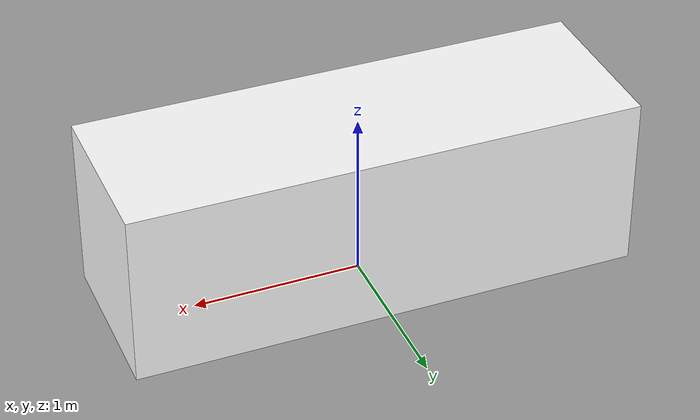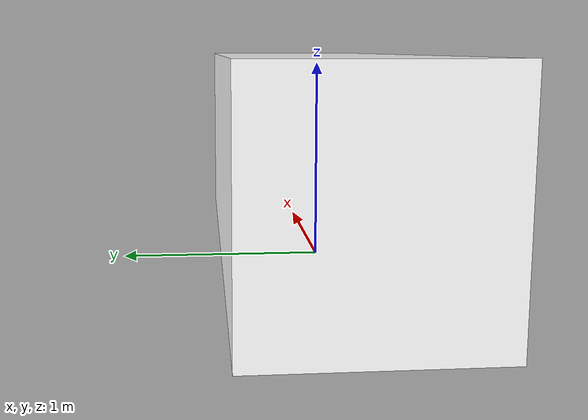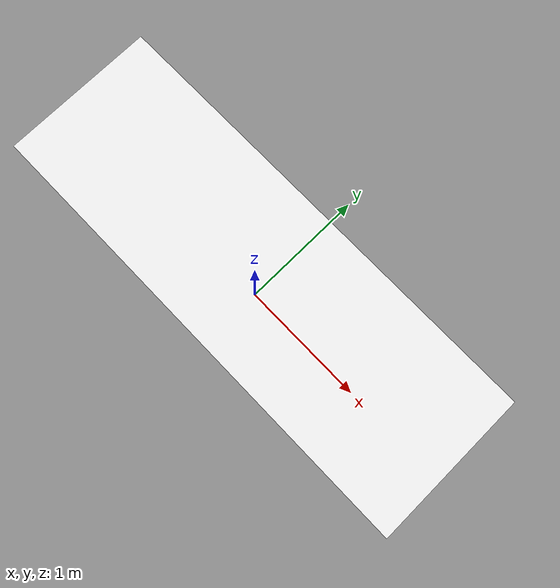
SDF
<?xml version="1.0"?>
<sdf version="1.11">
    <model name="Reflective table">
        <static>true</static>
        <link name="link">
            <pose>0 0 0.5198 0 0 0</pose>
            <collision name="collision">
                <geometry>
                    <!-- table dimensions already scaled (0.6 0.6 0.6) -->
                    <box>
                        <size>3 1 1.039566</size>
                    </box>
                </geometry>
                <surface>
                    <contact>
                        <ode>
                            <kp>1000000.0</kp>
                            <kd>100.0</kd>
                            <max_vel>1.0</max_vel>
                            <min_depth>0.001</min_depth>
                        </ode>
                    </contact>
                    <friction>
                        <ode>
                            <mu>0.8</mu>
                            <mu2>0.8</mu2>
                        </ode>
                    </friction>
                </surface>
            </collision>
            <visual name="visual">
                <pose>0 0 0 0 3.14 0</pose>
                <geometry>
                    <box>
                        <size>3 1 1.039566</size>
                    </box>
                </geometry>
                <material>
                    <diffuse>1.0 1.0 1.0</diffuse>
                    <ambient>0.5 0.5 0.5 1.0</ambient>
                    <!-- ? simplify table rendering -->
                </material>
            </visual>
        </link>
    </model>
</sdf>
